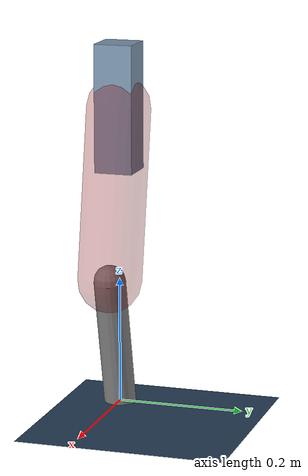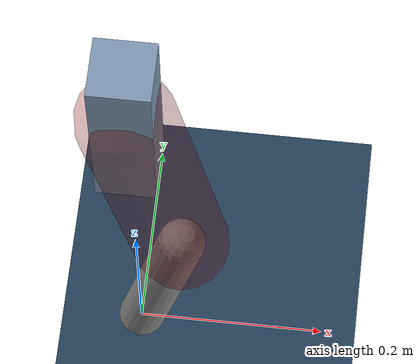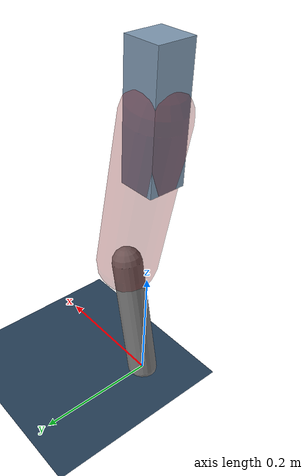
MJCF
<mujoco model="Hopper2D">
	<compiler inertiafromgeom="true" angle="radian" />
	<option timestep="0.001" integrator="implicit" cone="elliptic" solver="Newton" tolerance="1e-10" />

	<default>
		<geom contype="1" conaffinity="1" condim="3" friction="2 0.005 0.0001" solref="0.005 1" />
		<joint limited="true" damping="0.1" />
	</default>

	<asset>
		<texture name="skybox" type="skybox" builtin="gradient" rgb1=".4 .6 .8" rgb2="0 0 0" width="800" height="800" />
		<texture name="grid" type="2d" builtin="checker" rgb1=".1 .2 .3" rgb2=".2 .3 .4" width="300" height="300" mark="edge" markrgb=".2 .3 .4" />
		<material name="ground" texture="grid" texrepeat="1 1" texuniform="true" reflectance="0.1" />
		<material name="leg" rgba="0.5 0.6 0.7 1" />
	</asset>

	<worldbody>

		<geom name="floor" type="plane" size="5 5 0.25" material="ground" />

		<light directional="false" diffuse="0.8 0.8 0.8" specular="0.3 0.3 0.3" pos="0 0 2" dir="0 0 -1" />
		<light mode="targetbodycom" target="base" directional="false" diffuse="0.8 0.8 0.8" specular="0.3 0.3 0.3" pos="0 0 2" dir="0 0 -1" />

		<camera name="fixed" pos="0 -2 1" xyaxes="1 0 0 0 0 1" />
		<camera name="tracking" mode="trackcom" pos="0 -3 1" />

		<body name="root" pos="0 0 0.47288945908568353">
			<joint name="slide_x" type="slide" axis="1 0 0" range="-100 100" />
			<joint name="slide_z" type="slide" axis="0 0 1" range="0 10" />

			<body name="base" pos="0 0 0">
				<geom name="torso" type="box" size="0.03 0.03 0.1" mass="2.175" material="leg" />

				<body name="link1" pos="0 0 0" euler="0 1.3897819708032184 0">
					<joint type="hinge" axis="0 -1 0" pos="0 0 0" name="hinge1" limited="true" range="-3.14 3.14" stiffness="0" damping="0.1" />
					<geom name="thigh" type="capsule" fromto="0 0 0 0.26959402033040825 0 0" size="0.05" rgba="0.5 0 0 0.3" mass="0.9076038548921022" />

					<body name="link2" pos="0.26959402033040825 0 0" euler="0 0.41057022068950666 0">
						<joint type="hinge" axis="0 -1 0" pos="0 0 0" name="hinge2" limited="true" range="-3.14 3.14" stiffness="0" damping="0.1" />
						<geom name="shank" type="capsule" fromto="0 0 0 0.2132954387552753 0 0" size="0.025" mass="0.41206589487974776" />

					</body>
				</body>
			</body>
		</body>
	</worldbody>

	<actuator>
		<motor name="torque1" joint="hinge1" ctrlrange="-60.88477838962781 60.88477838962781" ctrllimited="true" gear="1" />
		<motor name="torque2" joint="hinge2" ctrlrange="-81.24625762519585 81.24625762519585" ctrllimited="true" gear="1" />
	</actuator>
</mujoco>
